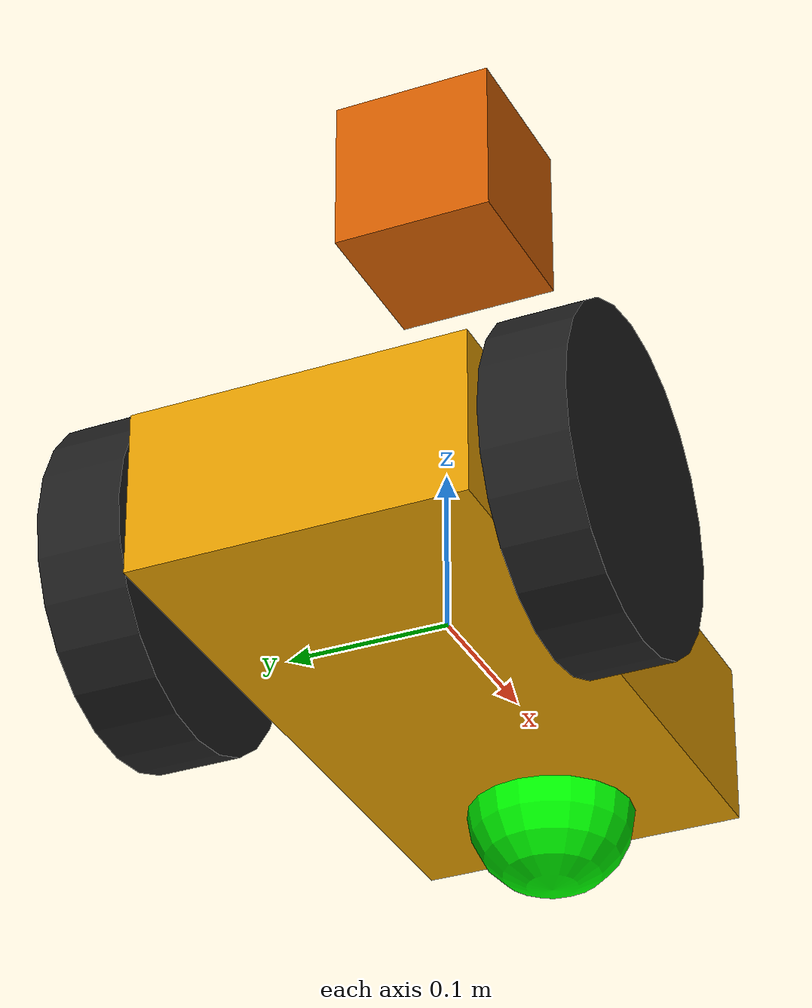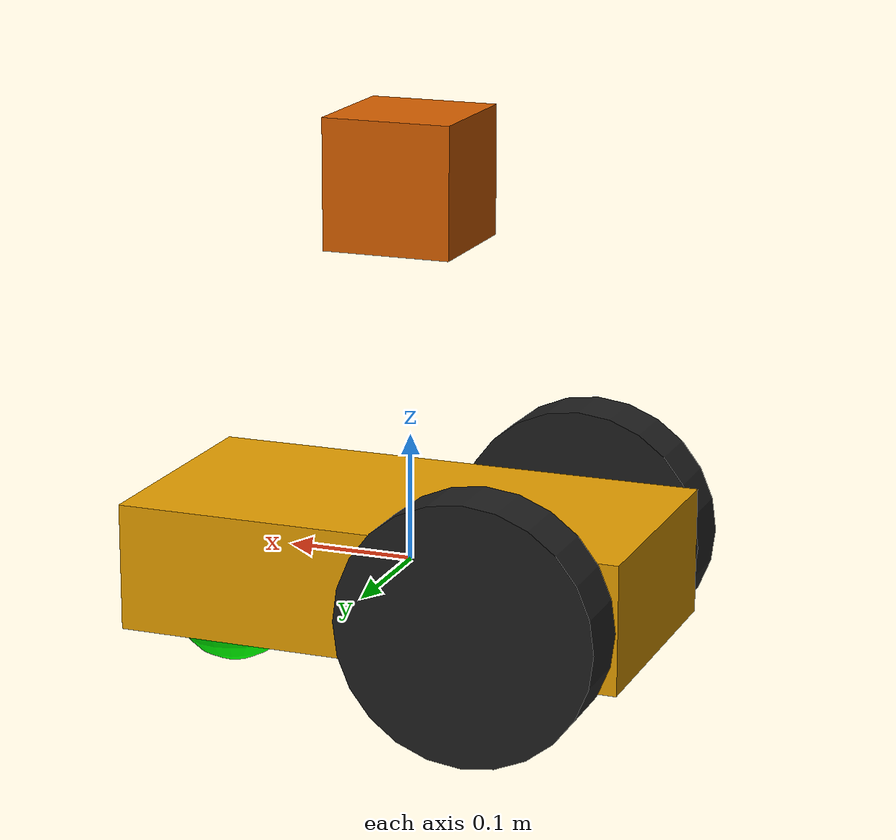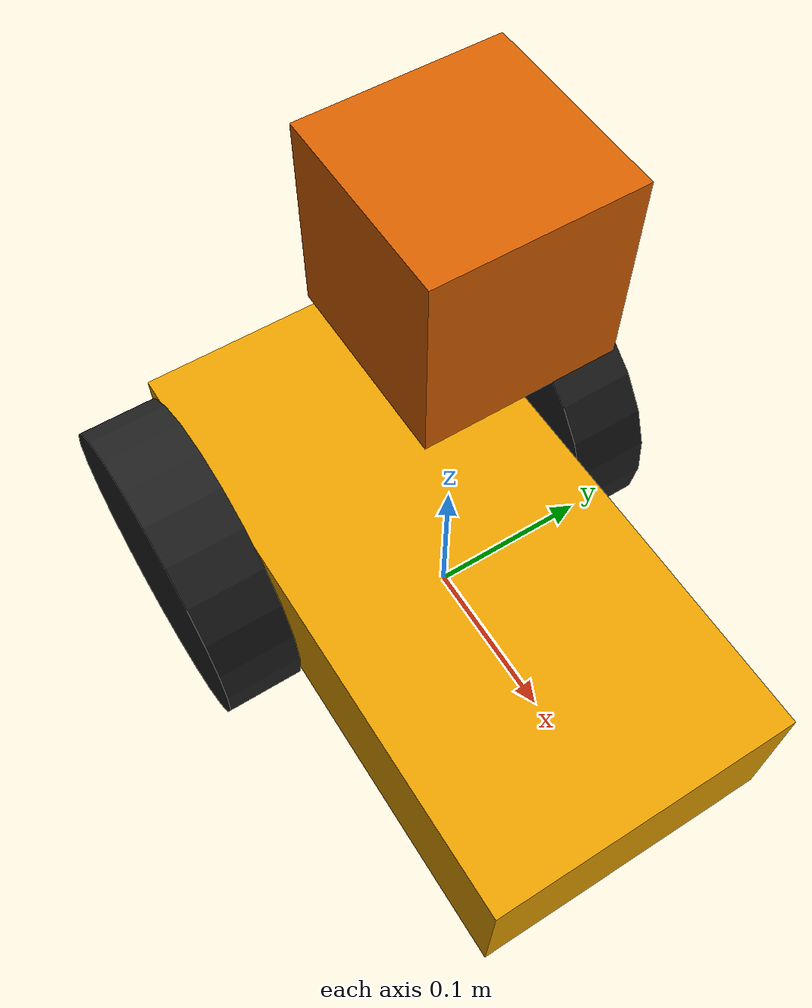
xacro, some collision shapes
<?xml version="1.0"?>
<robot name="simple_icart_middle" xmlns:xacro="http://www.ros.org/wiki/xacro">
  <link name="base_link">

    <visual>
      <geometry>
        <box size="0.400 0.200 0.100"/>
      </geometry>
    </visual>

    <collision>
      <geometry>
        <box size="0.400 0.200 0.100"/>
      </geometry>
    </collision>

   <inertial>
    <origin xyz="0 0 0"/>
    <mass value="0.500"/>
    <inertia ixx="0.0020833333" ixy="0" ixz="0" iyy="0.0070833333" iyz="0" izz="0.0083333333"/>
   </inertial>
  </link>

  <link name="left_wheel_link">
    <visual>
      <geometry>
        <cylinder radius="0.1" length="0.05"/>
      </geometry>
      <origin xyz="0 0 0" rpy="0 0 0"/>
      <material name="black"/>
    </visual>

    <collision>
      <geometry>
        <cylinder radius="0.1" length="0.05"/>
      </geometry>
    </collision>

   <inertial>
    <origin xyz="0 0 0"/>
    <mass value="0.500"/>
    <inertia ixx="0.0013541667" ixy="0" ixz="0" iyy="0.0013541667" iyz="0" izz="0.0025"/>
   </inertial>

  </link>

  <joint name="left_wheel_joint" type="continuous">
    <parent link="base_link"/>
    <child link="left_wheel_link"/>
    <origin rpy="-1.5707 0 0" xyz="-0.100 0.130 0"/>
    <axis xyz="0 0 1"/>
  </joint>

  <link name="right_wheel_link">
    <visual>
      <geometry>
        <cylinder radius="0.1" length="0.05"/>
      </geometry>
      <origin xyz="0 0 0" rpy="0 0 0"/>
      <material name="black"/>
    </visual>

    <collision>
      <geometry>
        <cylinder radius="0.1" length="0.05"/>
      </geometry>
    </collision>

   <inertial>
    <origin xyz="0 0 0"/>
    <mass value="0.500"/>
    <inertia ixx="0.0013541667" ixy="0" ixz="0" iyy="0.0013541667" iyz="0" izz="0.0025"/>
   </inertial>

  </link>

  <joint name="right_wheel_joint" type="continuous">
    <parent link="base_link"/>
    <child link="right_wheel_link"/>
    <origin rpy="1.5707 0 0" xyz="-0.100 -0.130 0"/>
    <axis xyz="0 0 -1"/>
  </joint>

  <link name="caster_link">
    <visual>
      <geometry>
        <sphere radius="0.05"/>
      </geometry>
      <material name="green">
        <color rgba="0 1 0 1"/>
      </material>
    </visual>

    <collision>
      <geometry>
        <sphere radius="0.05"/>
      </geometry>
    </collision>

   <inertial>
    <origin xyz="0 0 0"/>
    <mass value="0.500"/>
    <inertia ixx="0.00025" ixy="0" ixz="0" iyy="0.00025"  iyz="0" izz="0.00025"/>
   </inertial>

  </link>

  <joint name="caster_joint" type="fixed">
   <parent link="base_link"/>
   <child link="caster_link"/>
   <origin xyz="0.150 0 -0.050"/>
 </joint>

  <!-- IMU -->
  <link name="imu_link">
    <visual>
      <origin xyz="0.0 0.0 0.0" />
      <geometry>
        <box size="0.06 0.04 0.02" />
      </geometry>
      <material name="orange" />
    </visual>
  </link>
  <joint name="imu_link_joint" type="fixed">
    <parent link="base_link" />
    <child link="imu_link" />
    <origin xyz="0 0 0" rpy="0 0 0" />
  </joint>
  <gazebo reference="imu_link">
    <gravity>true</gravity>
    <sensor name="imu_sensor" type="imu">
      <always_on>true</always_on>
      <update_rate>100</update_rate>
      <visualize>true</visualize>
      <topic>data</topic>
      <plugin filename="libgazebo_ros_imu_sensor.so" name="imu_plugin">
        <topicName>imu</topicName>
        <bodyName>imu_link</bodyName>
        <updateRateHZ>10.0</updateRateHZ>
        <noise>
            <type>gaussian</type>
            <rate>
              <mean>0.0</mean>
              <stddev>2e-4</stddev>
              <bias_mean>0.0000075</bias_mean>
              <bias_stddev>0.0000008</bias_stddev>
            </rate>
            <accel>
              <mean>0.0</mean>
              <stddev>1.7e-2</stddev>
              <bias_mean>0.1</bias_mean>
              <bias_stddev>0.001</bias_stddev>
            </accel>
          </noise>
        <xyzOffset>0 0 0</xyzOffset>
        <rpyOffset>0 0 0</rpyOffset>
        <frameName>imu_link</frameName>
      </plugin>
      <pose>0 0 0 0 0 0</pose>
    </sensor>
  </gazebo>

  <!-- LiDAR(UTM-30LX) -->
  <joint name="hokuyo_joint" type="fixed">
    <axis xyz="0 1 0" />
    <origin xyz="0 0 0.3" rpy="0 0 0"/>
    <parent link="base_link"/>
    <child link="hokuyo_link"/>
  </joint>
  <link name="hokuyo_link">
    <collision>
      <origin xyz="0 0 0" rpy="0 0 0"/>
      <geometry>
    <box size="0.1 0.1 0.1"/>
      </geometry>
    </collision>
    <visual>
      <origin xyz="0 0 0" rpy="0 0 0"/>
      <geometry>
        <mesh filename="package://rwrc_simulator/meshes/hokuyo.dae"/>
      </geometry>
    </visual>
    <inertial>
      <mass value="1e-5" />
      <origin xyz="0 0 0" rpy="0 0 0"/>
      <inertia ixx="1e-6" ixy="0" ixz="0" iyy="1e-6" iyz="0" izz="1e-6" />
    </inertial>
  </link>
  <gazebo reference="hokuyo_link">
    <sensor type="ray" name="head_hokuyo_sensor">
      <pose>0 0 0 0 0 0</pose>
      <visualize>false</visualize>
      <update_rate>40</update_rate>
      <ray>
        <scan>
          <horizontal>
            <samples>720</samples>
            <resolution>1</resolution>
            <min_angle>-1.570796</min_angle>
            <max_angle>1.570796</max_angle>
          </horizontal>
        </scan>
        <range>
          <min>0.10</min>
          <max>30.0</max>
          <resolution>0.01</resolution>
        </range>
        <noise>
          <type>gaussian</type>
          <mean>0.0</mean>
          <stddev>0.01</stddev>
        </noise>
      </ray>
      <plugin name="gazebo_ros_head_hokuyo_controller" filename="libgazebo_ros_laser.so">
        <topicName>/scan</topicName>
        <frameName>hokuyo_link</frameName>
      </plugin>
    </sensor>
  </gazebo>

  <!-- ===============  Transmission =============== -->
 <transmission name="left_wheel_trans">
      <type>transmission_interface/SimpleTransmission</type>
      <joint name="left_wheel_joint">
  <hardwareInterface>VelocityJointInterface</hardwareInterface>
      </joint>
   <actuator name="left_wheel_motor">
  <hardwareInterface>VelocityJointInterface</hardwareInterface>
  <mechanicalReduction>30</mechanicalReduction>
      </actuator>
 </transmission>
 <transmission name="right_wheel_trans">
      <type>transmission_interface/SimpleTransmission</type>
      <joint name="right_wheel_joint">
  <hardwareInterface>VelocityJointInterface</hardwareInterface>
      </joint>
   <actuator name="right_wheel_motor">
  <hardwareInterface>VelocityJointInterface</hardwareInterface>
  <mechanicalReduction>30</mechanicalReduction>
      </actuator>
 </transmission>

  <!-- =============== Gazebo =============== -->
  <gazebo>
    <plugin name="gazebo_ros_control" filename="libgazebo_ros_control.so">
      <robotNamespace>simple_icart_middle
    </robotNamespace>
      <robotSimType>gazebo_ros_control/DefaultRobotHWSim</robotSimType>
      <legacyModeNS>true</legacyModeNS>
    </plugin>
  </gazebo>

 <gazebo reference="base_link">
   <selfCollide>true</selfCollide>
    <mu1 value="0.05" />
    <mu2 value="0.05" />
  </gazebo>

 <gazebo reference="left_wheel_link">
   <selfCollide>true</selfCollide>
    <mu1 value="0.8" />
    <mu2 value="0.8" />
  </gazebo>

 <gazebo reference="right_wheel_link">
   <selfCollide>true</selfCollide>
    <mu1 value="0.8" />
    <mu2 value="0.8" />
  </gazebo>

 <gazebo reference="caster_link">
   <selfCollide>true</selfCollide>
     <!-- This caster is no frictional resistance. -->
    <mu1 value="0.0" />
    <mu2 value="0.0" />
  </gazebo>

</robot>
